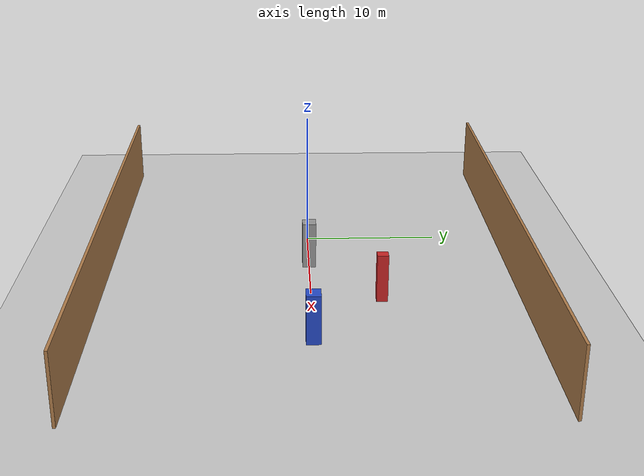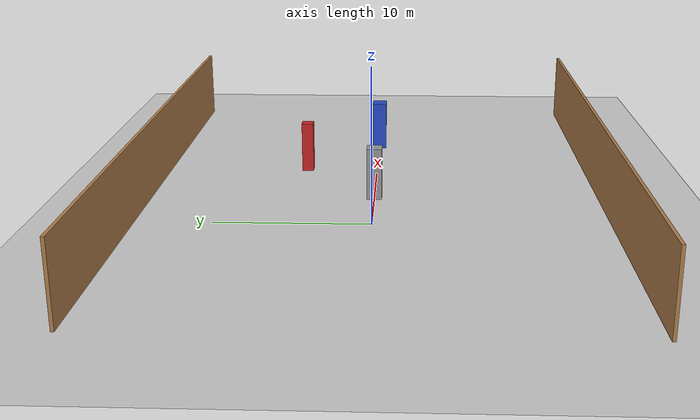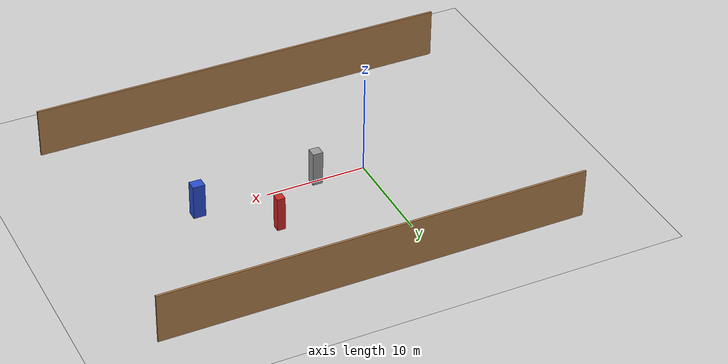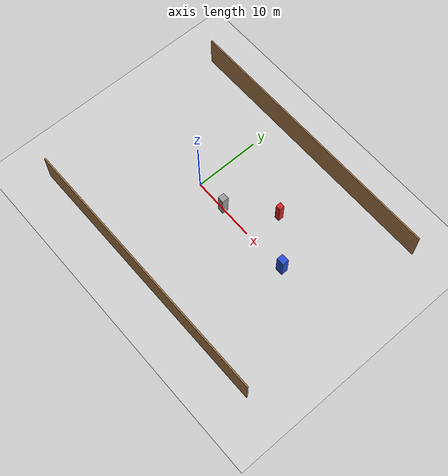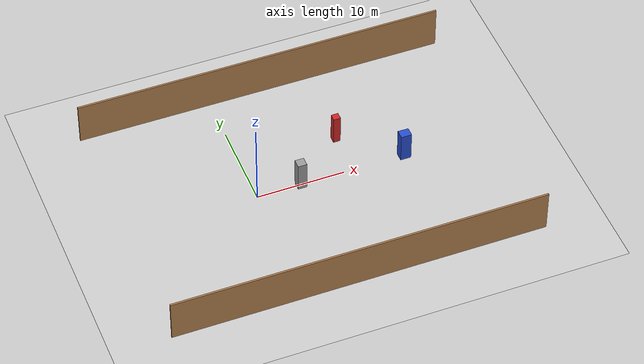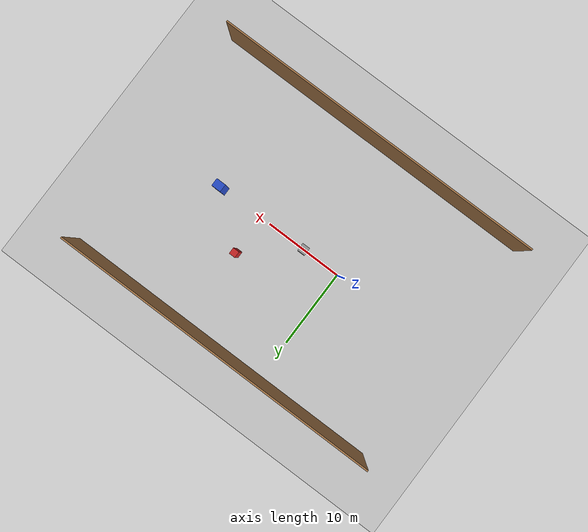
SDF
<?xml version="1.0"?>
<!-- test_static.world: ADR-020 已验证布局 — 3个静态障碍物 -->
<sdf version="1.6">
  <world name="test_static">

    <physics type="ode">
      <max_step_size>0.001</max_step_size>
      <real_time_factor>1</real_time_factor>
      <real_time_update_rate>1000</real_time_update_rate>
    </physics>

    <include><uri>model://sun</uri></include>
    <include><uri>model://ground_plane</uri></include>

    <model name="fence_north">
      <static>true</static><pose>6 15 2.5 0 0 0</pose>
      <link name="link">
        <collision name="c"><geometry><box><size>42 0.2 5.0</size></box></geometry></collision>
        <visual name="v"><geometry><box><size>42 0.2 5.0</size></box></geometry>
          <material><script><uri>file://media/materials/scripts/gazebo.material</uri><name>Gazebo/WoodFloor</name></script></material>
        </visual>
      </link>
    </model>
    <model name="fence_south">
      <static>true</static><pose>6 -15 2.5 0 0 0</pose>
      <link name="link">
        <collision name="c"><geometry><box><size>42 0.2 5.0</size></box></geometry></collision>
        <visual name="v"><geometry><box><size>42 0.2 5.0</size></box></geometry>
          <material><script><uri>file://media/materials/scripts/gazebo.material</uri><name>Gazebo/WoodFloor</name></script></material>
        </visual>
      </link>
    </model>

    <model name="obstacle_A">
      <static>true</static>
      <pose>5.0 0.0 1.75 0 0 0</pose>
      <link name="link">
        <collision name="c"><geometry><box><size>1.0 1.0 3.5</size></box></geometry></collision>
        <visual name="v">
          <geometry><box><size>1.0 1.0 3.5</size></box></geometry>
          <material><script><uri>file://media/materials/scripts/gazebo.material</uri><name>Gazebo/Grey</name></script></material>
        </visual>
      </link>
    </model>

    <model name="obstacle_B">
      <static>true</static>
      <pose>11.0 5.0 1.75 0 0 0</pose>
      <link name="link">
        <collision name="c"><geometry><box><size>0.8 0.8 3.5</size></box></geometry></collision>
        <visual name="v">
          <geometry><box><size>0.8 0.8 3.5</size></box></geometry>
          <material><script><uri>file://media/materials/scripts/gazebo.material</uri><name>Gazebo/Red</name></script></material>
        </visual>
      </link>
    </model>

    <model name="obstacle_C">
      <static>true</static>
      <pose>17.0 0.0 1.75 0 0 0</pose>
      <link name="link">
        <collision name="c"><geometry><box><size>1.2 1.0 3.5</size></box></geometry></collision>
        <visual name="v">
          <geometry><box><size>1.2 1.0 3.5</size></box></geometry>
          <material><script><uri>file://media/materials/scripts/gazebo.material</uri><name>Gazebo/Blue</name></script></material>
        </visual>
      </link>
    </model>

  </world>
</sdf>
